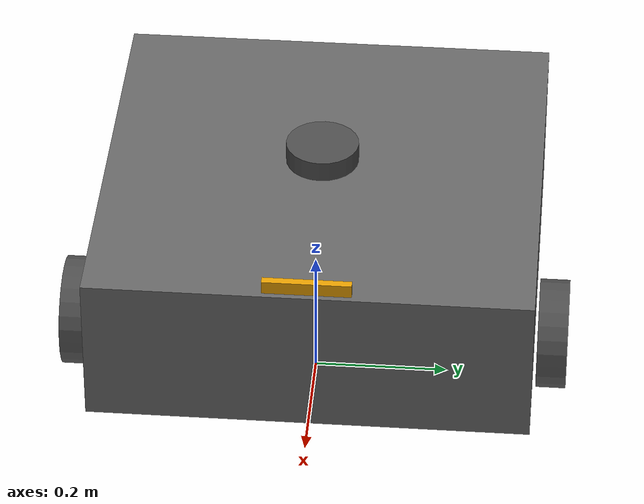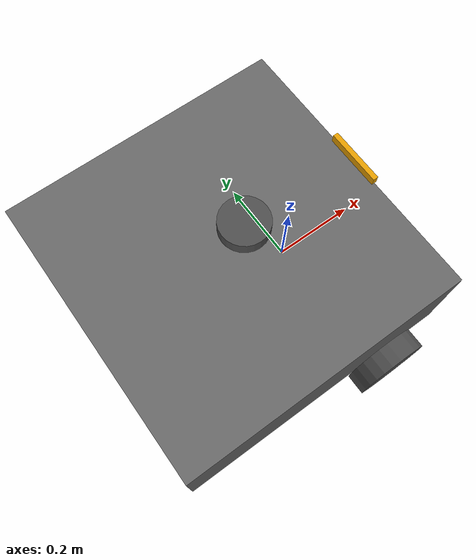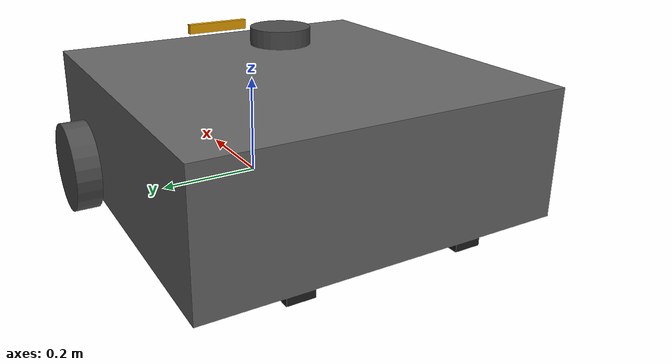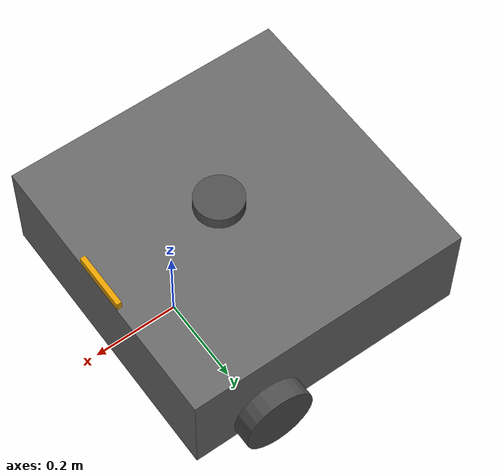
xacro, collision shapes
<?xml version="1.0" ?>
<robot name="turtlebot3_waffle" xmlns:xacro="http://ros.org/wiki/xacro">

  <xacro:arg name="namespace" default=""/>
  <xacro:property name="namespace" value="$(arg namespace)"/>

  <material name="black">
      <color rgba="0.0 0.0 0.0 1.0"/>
  </material>

  <material name="dark">
    <color rgba="0.3 0.3 0.3 1.0"/>
  </material>

  <material name="light_black">
    <color rgba="0.4 0.4 0.4 1.0"/>
  </material>

  <material name="blue">
    <color rgba="0.0 0.0 0.8 1.0"/>
  </material>

  <material name="green">
    <color rgba="0.0 0.8 0.0 1.0"/>
  </material>

  <material name="grey">
    <color rgba="0.5 0.5 0.5 1.0"/>
  </material>

  <material name="orange">
    <color rgba="1.0 0.4235 0.0392 1.0"/>
  </material>

  <material name="brown">
    <color rgba="0.8706 0.8118 0.7647 1.0"/>
  </material>

  <material name="red">
    <color rgba="0.8 0.0 0.0 1.0"/>
  </material>

  <material name="white">
    <color rgba="1.0 1.0 1.0 1.0"/>
  </material>

  <link name="${namespace}base_footprint"/>

  <joint name="${namespace}base_joint" type="fixed">
    <parent link="${namespace}base_footprint"/>
    <child link="${namespace}base_link" />
    <origin xyz="0 0 0.025" rpy="0 0 0"/>
  </joint>

  <link name="${namespace}base_link">
    <visual>
      <origin xyz="-0.16 0 0" rpy="0 0 0"/>
      <geometry>
        <mesh filename="package://turtlebot3_description/meshes/bases/waffle_base.stl" scale="0.0025 0.0025 0.0025"/>
      </geometry>
      <material name="light_black"/>
    </visual>

    <collision>
      <origin xyz="-0.16 0 0.1175" rpy="0 0 0"/>
      <geometry>
        <box size="0.665 0.665 0.235"/>
      </geometry>
    </collision>

    <inertial>
      <origin xyz="0 0 0" rpy="0 0 0"/>
      <mass value="21.4517125"/>
      <inertia ixx="0.849635918" ixy="-0.004646150684" ixz="0.0108989248"
               iyy="0.8417521289" iyz="-0.0003459208887"
               izz="1.427024121" />
    </inertial>
  </link>

  <joint name="${namespace}wheel_left_joint" type="continuous">
    <parent link="${namespace}base_link"/>
    <child link="${namespace}wheel_left_link"/>
    <origin xyz="0 0.36 0.0575" rpy="-1.57 0 0"/>
    <axis xyz="0 0 1"/>
  </joint>

  <link name="${namespace}wheel_left_link">
    <visual>
      <origin xyz="0 0 0" rpy="1.57 0 0"/>
      <geometry>
        <mesh filename="package://turtlebot3_description/meshes/wheels/left_tire.stl" scale="0.0025 0.0025 0.0025"/>
      </geometry>
      <material name="dark"/>
    </visual>

    <collision>
      <origin xyz="0 0 0" rpy="0 0 0"/>
      <geometry>
        <cylinder length="0.045" radius="0.0825"/>
      </geometry>
    </collision>

    <inertial>
      <origin xyz="0 0 0" />
      <mass value="0.4452959375" />
      <inertia ixx="0.001091365234" ixy="-4.137674121e-09" ixz="-5.798995996e-07"
               iyy="0.001093009082" iyz="-1.406260449e-09"
               izz="0.002022710742" />
      </inertial>
  </link>

  <joint name="${namespace}wheel_right_joint" type="continuous">
    <parent link="${namespace}base_link"/>
    <child link="${namespace}wheel_right_link"/>
    <origin xyz="0 -0.36 0.0575" rpy="-1.57 0 0"/>
    <axis xyz="0 0 1"/>
  </joint>

  <link name="${namespace}wheel_right_link">
    <visual>
      <origin xyz="0 0 0" rpy="1.57 0 0"/>
      <geometry>
        <mesh filename="package://turtlebot3_description/meshes/wheels/right_tire.stl" scale="0.0025 0.0025 0.0025"/>
      </geometry>
      <material name="dark"/>
    </visual>

    <collision>
      <origin xyz="0 0 0" rpy="0 0 0"/>
      <geometry>
        <cylinder length="0.045" radius="0.0825"/>
      </geometry>
    </collision>

    <inertial>
      <origin xyz="0 0 0" />
      <mass value="0.4452959375" />
      <inertia ixx="0.001091365234" ixy="-4.137674121e-09" ixz="-5.798995996e-07"
               iyy="0.001093009082" iyz="-1.406260449e-09"
               izz="0.002022710742" />
      </inertial>
  </link>

  <joint name="${namespace}caster_back_right_joint" type="fixed">
    <parent link="${namespace}base_link"/>
    <child link="${namespace}caster_back_right_link"/>
    <origin xyz="-0.4425 -0.16 -0.01" rpy="-1.57 0 0"/>
  </joint>

  <link name="${namespace}caster_back_right_link">
    <collision>
      <origin xyz="0 0.0025 0" rpy="0 0 0"/>
      <geometry>
        <box size="0.075 0.0225 0.05"/>
      </geometry>
    </collision>

    <inertial>
      <origin xyz="0 0 0" />
      <mass value="0.078125" />
      <inertia ixx="0.09765625" ixy="0" ixz="0"
               iyy="0.09765625" iyz="0"
               izz="0.09765625" />
    </inertial>
  </link>

  <joint name="${namespace}caster_back_left_joint" type="fixed">
    <parent link="${namespace}base_link"/>
    <child link="${namespace}caster_back_left_link"/>
    <origin xyz="-0.4425 0.16 -0.01" rpy="-1.57 0 0"/>
  </joint>

  <link name="${namespace}caster_back_left_link">
    <collision>
      <origin xyz="0 0.0025 0" rpy="0 0 0"/>
      <geometry>
        <box size="0.075 0.0225 0.05"/>
      </geometry>
    </collision>

    <inertial>
      <origin xyz="0 0 0" />
      <mass value="0.078125" />
      <inertia ixx="0.09765625" ixy="0" ixz="0"
               iyy="0.09765625" iyz="0"
               izz="0.09765625" />
    </inertial>
  </link>

  <joint name="${namespace}imu_joint" type="fixed">
    <parent link="${namespace}base_link"/>
    <child link="${namespace}imu_link"/>
    <origin xyz="0 0 0.17" rpy="0 0 0"/>
  </joint>

  <link name="${namespace}imu_link"/>

  <joint name="${namespace}scan_joint" type="fixed">
    <parent link="${namespace}base_link"/>
    <child link="${namespace}base_scan"/>
    <origin xyz="-0.16 0 0.305" rpy="0 0 0"/>
  </joint>

  <link name="${namespace}base_scan">
    <visual>
      <origin xyz="0 0 0" rpy="0 0 0"/>
      <geometry>
        <mesh filename="package://turtlebot3_description/meshes/sensors/lds.stl" scale="0.001 0.001 0.001"/>
      </geometry>
      <material name="dark"/>
    </visual>

    <collision>
      <origin xyz="0.0375 0 -0.01625" rpy="0 0 0"/>
      <geometry>
        <cylinder length="0.0315" radius="0.055"/>
      </geometry>
    </collision>

    <inertial>
      <mass value="0.114" />
      <origin xyz="0 0 0" />
      <inertia ixx="0.001" ixy="0.0" ixz="0.0"
               iyy="0.001" iyz="0.0"
               izz="0.001" />
    </inertial>
  </link>

  <joint name="${namespace}camera_joint" type="fixed">
    <origin xyz="0.16 -0.1625 0.235" rpy="0 0 0"/>
    <parent link="${namespace}base_link"/>
    <child link="${namespace}camera_link"/>
  </joint>

  <link name="${namespace}camera_link">
    <visual>
     <origin xyz="0 0 0" rpy="1.57 0 1.57"/>
      <geometry>
       <mesh filename="package://turtlebot3_description/meshes/sensors/r200.dae" />
      </geometry>
    </visual>
    <collision>
      <origin xyz="0.0075 0.1625 0.0175" rpy="0 0 0"/>
      <geometry>
        <box size="0.012 0.132 0.020"/>
      </geometry>
    </collision>

  </link>

  <joint name="${namespace}camera_rgb_joint" type="fixed">
    <origin xyz="0.0125 0.045 0.0325" rpy="0 0 0"/>

    <parent link="${namespace}camera_link"/>
    <child link="${namespace}camera_rgb_frame"/>
  </joint>
  <link name="${namespace}camera_rgb_frame"/>

  <joint name="${namespace}camera_rgb_optical_joint" type="fixed">
    <origin xyz="0 0 0" rpy="-1.57 0 -1.57"/>
    <parent link="${namespace}camera_rgb_frame"/>
    <child link="${namespace}camera_rgb_optical_frame"/>
  </joint>
  <link name="${namespace}camera_rgb_optical_frame"/>

  <joint name="${namespace}camera_depth_joint" type="fixed">
    <origin xyz="0.0125 0.07 0.0325" rpy="0 0 0"/>

    <parent link="${namespace}camera_link"/>
    <child link="${namespace}camera_depth_frame"/>
  </joint>
  <link name="${namespace}camera_depth_frame"/>

  <joint name="${namespace}camera_depth_optical_joint" type="fixed">
    <origin xyz="0 0 0" rpy="-1.57 0 -1.57"/>
    <parent link="${namespace}camera_depth_frame"/>
    <child link="${namespace}camera_depth_optical_frame"/>
  </joint>
  <link name="${namespace}camera_depth_optical_frame"/>

    <!-- Gazebo visual appearance -->
  <gazebo reference="${namespace}base_link">
    <material>Gazebo/DarkGrey</material>
  </gazebo>

  <gazebo reference="${namespace}wheel_left_link">
    <material>Gazebo/Black</material>
  </gazebo>

  <gazebo reference="${namespace}wheel_right_link">
    <material>Gazebo/Black</material>
  </gazebo>

  <gazebo reference="${namespace}caster_back_left_link">
    <material>Gazebo/Black</material>
  </gazebo>

  <gazebo reference="${namespace}caster_back_right_link">
    <material>Gazebo/Black</material>
  </gazebo>

</robot>
